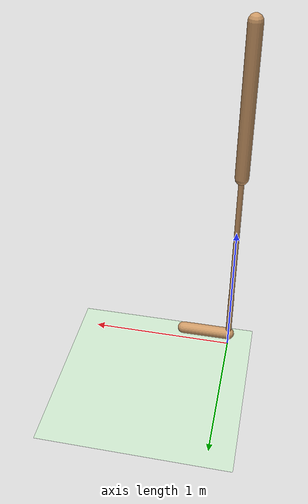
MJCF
<mujoco model="walker2d">
  <compiler angle="degree" inertiafromgeom="true" />
  <default>
    <joint armature="0.01" damping=".1" limited="true" />
    <geom conaffinity="0" condim="3" contype="1" density="1000" friction=".7 .1 .1" rgba="0.8 0.6 .4 1" />
  </default>
  <option integrator="RK4" timestep="0.002" />
  <worldbody>
    <light cutoff="100" diffuse="1 1 1" dir="-0 0 -1.3" directional="true" exponent="1" pos="0 0 1.3" specular=".1 .1 .1" />
    <geom conaffinity="1" condim="3" name="floor" pos="0 0 0" rgba="0.8 0.9 0.8 1" size="40 40 40" type="plane" material="MatPlane" />
    <body name="torso" pos="0 0 1.920292115211487">
      <camera name="track" mode="trackcom" pos="0 -5 -1.25" xyaxes="1 0 0 0 0 1" />
      <joint armature="0" axis="1 0 0" damping="0" limited="false" name="rootx" pos="0 0 -1.25" stiffness="0" type="slide" />
      <joint armature="0" axis="0 0 1" damping="0" limited="false" name="rootz" pos="0 0 -1.25" ref="1.25" stiffness="0" type="slide" />
      <joint armature="0" axis="0 1 0" damping="0" limited="false" name="rooty" pos="0 0 0" stiffness="0" type="hinge" />
      <geom friction="0.9" name="torso_geom" size="0.045169830322265625 0.492712140083313" type="capsule" />
      <body name="thigh" pos="0 0 -0.492712140083313">
        <joint axis="0 -1 0" name="thigh_joint" pos="0 0 0" range="-150 0" type="hinge" />
        <site name="torso_thigh_site" pos="0 0 0" size="0.01" type="sphere" rgba="1 0 0 0.5" />
        <geom friction="0.9" pos="0 0 -0.4813094735145569" name="thigh_geom" size="0.01846267282962799 0.4813094735145569" type="capsule" />
        <body name="leg" pos="0 0 -1.1450994610786438">
          <joint axis="0 -1 0" name="leg_joint" pos="0 0 0.18248051404953003" range="-150 0" type="hinge" />
          <site name="thigh_leg_site" pos="0 0 0.25" size="0.01" type="sphere" rgba="1 0 0 0.5" />
          <geom friction="0.9" name="leg_geom" size="0.020109184086322784 0.18248051404953003" type="capsule" />
          <body name="foot" pos="0.33363690972328186 0 -0.28248051404953">
            <joint axis="0 -1 0" name="foot_joint" pos="-0.33363690972328186 0 0.1" range="-45 45" type="hinge" />
            <site name="leg_foot_site" pos="-0.2 0 0.1" size="0.01" type="sphere" rgba="1 0 0 0.5" />
            <geom friction="0.9" pos="-0.16681845486164093 0 0.1" quat="0.70710678118654757 0 -0.70710678118654746 0" name="foot_geom" size="0.042714327573776245 0.16681845486164093" type="capsule" />
          </body>
        </body>
      </body>

      <body name="thigh_left" pos="0 0 -0.492712140083313">
        <joint axis="0 -1 0" name="thigh_left_joint" pos="0 0 0" range="-150 0" type="hinge" />
        <site name="torso_thigh_left_site" pos="0 0 0" size="0.01" type="sphere" rgba="1 0 0 0.5" />
        <geom friction="0.9" name="thigh_left_geom" rgba=".7 .3 .6 1" size="0.01846267282962799 0.4813094735145569" pos="0 0 -0.4813094735145569" type="capsule" />
        <body name="leg_left" pos="0 0 -1.1450994610786438">
          <joint axis="0 -1 0" name="leg_left_joint" pos="0 0 0.18248051404953003" range="-150 0" type="hinge" />
          <site name="thigh_leg_left_site" pos="0 0 0.25" size="0.01" type="sphere" rgba="1 0 0 0.5" />
          <geom friction="0.9" name="leg_left_geom" rgba=".7 .3 .6 1" size="0.020109184086322784 0.18248051404953003" type="capsule" />
          <body name="foot_left" pos="0.33363690972328186 0 -0.28248051404953">
            <joint axis="0 -1 0" name="foot_left_joint" pos="-0.33363690972328186 0 0.1" range="-45 45" type="hinge" />
            <site name="leg_foot_left_site" pos="-0.2 0 0.1" size="0.01" type="sphere" rgba="1 0 0 0.5" />
            <geom friction="1.9" name="foot_left_geom" rgba=".7 .3 .6 1" size="0.042714327573776245 0.16681845486164093" pos="-0.16681845486164093 0 0.1" type="capsule" quat="0.70710678118654757 0 -0.70710678118654746 0" />
          </body>
        </body>
      </body>
    </body>
  </worldbody>
  <actuator>

    <motor ctrllimited="true" ctrlrange="-1.0 1.0" gear="29.16695090857203" joint="thigh_joint" />
    <motor ctrllimited="true" ctrlrange="-1.0 1.0" gear="18.44783493200101" joint="leg_joint" />
    <motor ctrllimited="true" ctrlrange="-1.0 1.0" gear="84.54515824074839" joint="foot_joint" />
    <motor ctrllimited="true" ctrlrange="-1.0 1.0" gear="29.16695090857203" joint="thigh_left_joint" />
    <motor ctrllimited="true" ctrlrange="-1.0 1.0" gear="18.44783493200101" joint="leg_left_joint" />
    <motor ctrllimited="true" ctrlrange="-1.0 1.0" gear="84.54515824074839" joint="foot_left_joint" />

  </actuator>
    <asset>
        <texture type="skybox" builtin="gradient" rgb1=".4 .5 .6" rgb2="0 0 0" width="100" height="100" />
        <texture builtin="flat" height="1278" mark="cross" markrgb="1 1 1" name="texgeom" random="0.01" rgb1="0.8 0.6 0.4" rgb2="0.8 0.6 0.4" type="cube" width="127" />
        <texture builtin="checker" height="100" name="texplane" rgb1="0 0 0" rgb2="0.8 0.8 0.8" type="2d" width="100" />
        <material name="MatPlane" reflectance="0.5" shininess="1" specular="1" texrepeat="60 60" texture="texplane" />
        <material name="geom" texture="texgeom" texuniform="true" />
    </asset>

  <sensor>
    <force site="torso_thigh_site" name="torso_thigh_sensor" />
    <force site="thigh_leg_site" name="thigh_leg_sensor" />
    <force site="leg_foot_site" name="leg_foot_sensor" />
    <force site="torso_thigh_left_site" name="torso_thigh_left_sensor" />
    <force site="thigh_leg_left_site" name="thigh_leg_left_sensor" />
    <force site="leg_foot_left_site" name="leg_foot_left_sensor" />
  </sensor>
</mujoco>
